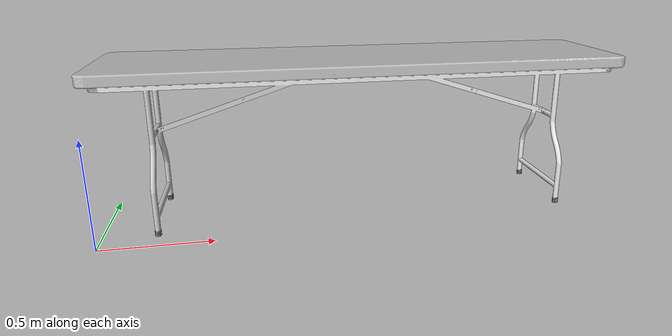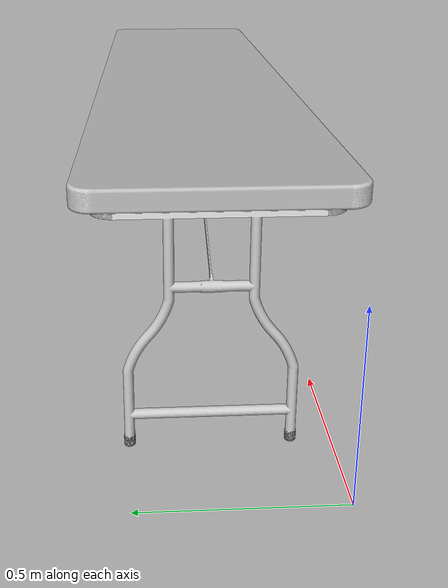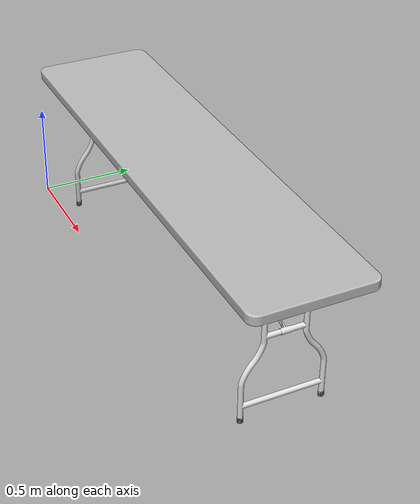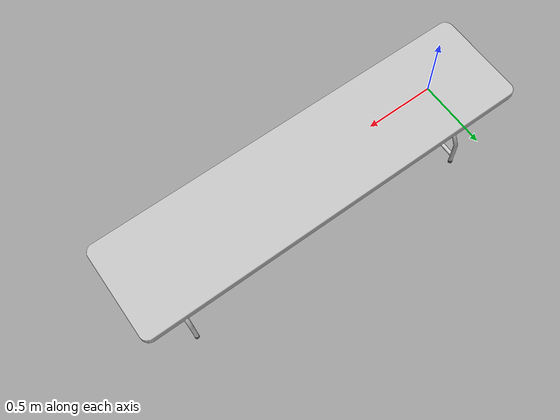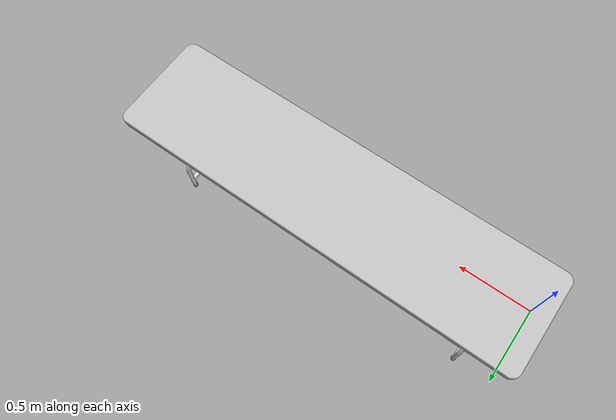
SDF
<?xml version="1.0"?>
<sdf version="1.4">
   <model name="table">
   <pose>0 0 0  0 0 0</pose>
   <static>true</static>
   <link name="body">
   <collision name="body">
     <geometry>
       <mesh>
          <uri>model://table/meshes/table.stl</uri>
       </mesh>
     </geometry>
   </collision>
   <visual name="visual">
     <geometry>
       <mesh>
          <uri>model://table/meshes/table.dae</uri>
          <scale>1 1 1</scale>
       </mesh>
     </geometry>
   </visual>
   </link>
   </model>
</sdf>
